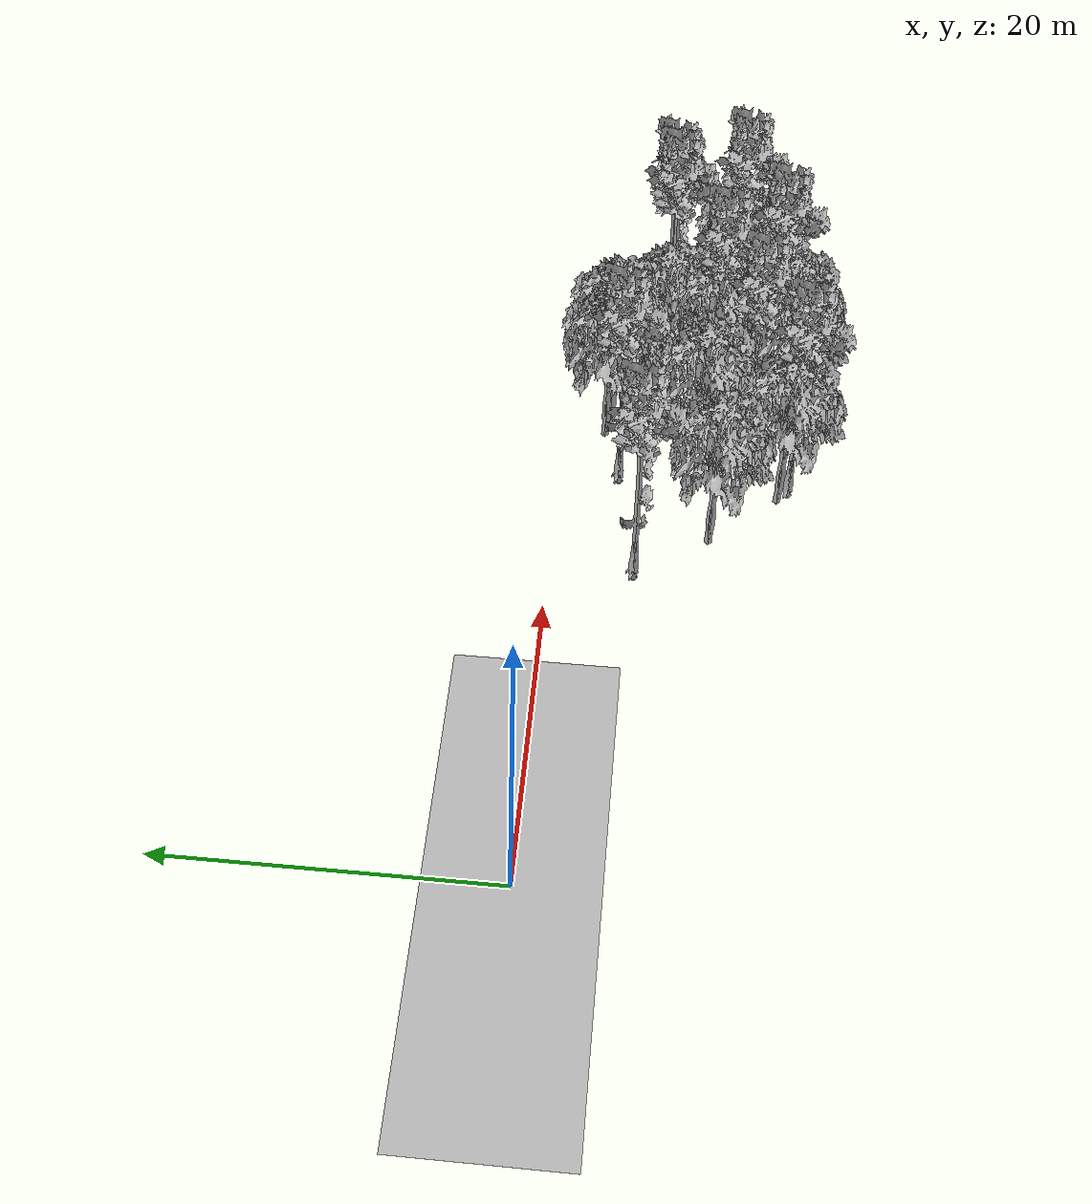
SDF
<sdf version="1.7">
 <world name="default">
  <model name="ground_plane">
   <static>1</static>
   <link name="link">
    <collision name="collision">
     <pose>-50 0 0 0 -0 0</pose>
     <geometry><plane><normal>0 0 1</normal><size>100 100</size></plane></geometry>
     <surface><contact><ode><min_depth>0.01</min_depth><max_vel>0</max_vel></ode></contact></surface>
    </collision>
    <visual name="grass">
     <cast_shadows>0</cast_shadows>
     <geometry>
      <mesh>
       <scale>0.5814285714285714 0.18142857142857144 0.1</scale>
       <uri>file://grass_plane/meshes/grass_plane.dae</uri>
      </mesh>
     </geometry>
    </visual>
   </link>
  </model>
  <model name="Tree 0">
   <static>1</static>
   <pose>46.44234237809738 -10.756084124833425 0 1.57079 -0 0</pose>
   <link name="link">
    <collision name="collision">
     <geometry><mesh><scale>3.5 5 3.5</scale><uri>model://tree_2/meshes/tree_2.obj</uri></mesh></geometry>
    </collision>
    <visual name="visual">
     <geometry><mesh><scale>3.5 5 3.5</scale><uri>model://tree_2/meshes/tree_2.obj</uri></mesh></geometry>
    </visual>
   </link>
  </model>
  <model name="Tree 3">
   <static>1</static>
   <pose>26.230850330044063 -9.717977953429486 0 1.57079 -0 0</pose>
   <link name="link">
    <collision name="collision">
     <geometry><mesh><scale>3.5 5 3.5</scale><uri>model://tree_2/meshes/tree_2.obj</uri></mesh></geometry>
    </collision>
    <visual name="visual">
     <geometry><mesh><scale>3.5 5 3.5</scale><uri>model://tree_2/meshes/tree_2.obj</uri></mesh></geometry>
    </visual>
   </link>
  </model>
  <model name="Tree 4">
   <static>1</static>
   <pose>46.77839195121835 -6.231885729458671 0 1.57079 -0 0</pose>
   <link name="link">
    <collision name="collision">
     <geometry><mesh><scale>3.5 5 3.5</scale><uri>model://tree_9/meshes/tree_9.obj</uri></mesh></geometry>
    </collision>
    <visual name="visual">
     <geometry><mesh><scale>3.5 5 3.5</scale><uri>model://tree_9/meshes/tree_9.obj</uri></mesh></geometry>
    </visual>
   </link>
  </model>
  <model name="Tree 8">
   <static>1</static>
   <pose>39.88170658094448 -6.213259696053058 0 1.57079 -0 0</pose>
   <link name="link">
    <collision name="collision">
     <geometry><mesh><scale>3.5 5 3.5</scale><uri>model://tree_2/meshes/tree_2.obj</uri></mesh></geometry>
    </collision>
    <visual name="visual">
     <geometry><mesh><scale>3.5 5 3.5</scale><uri>model://tree_2/meshes/tree_2.obj</uri></mesh></geometry>
    </visual>
   </link>
  </model>
  <model name="Tree 19">
   <static>1</static>
   <pose>45.95892816855037 -6.172525978426117 0 1.57079 -0 0</pose>
   <link name="link">
    <collision name="collision">
     <geometry><mesh><scale>3 2 3</scale><uri>model://tree_3/meshes/tree_3.obj</uri></mesh></geometry>
    </collision>
    <visual name="visual">
     <geometry><mesh><scale>3 2 3</scale><uri>model://tree_3/meshes/tree_3.obj</uri></mesh></geometry>
    </visual>
   </link>
  </model>
  <model name="Tree 29">
   <static>1</static>
   <pose>35.246683009240556 -2.729741963374302 0 1.57079 -0 0</pose>
   <link name="link">
    <collision name="collision">
     <geometry><mesh><scale>3.5 5 3.5</scale><uri>model://tree_2/meshes/tree_2.obj</uri></mesh></geometry>
    </collision>
    <visual name="visual">
     <geometry><mesh><scale>3.5 5 3.5</scale><uri>model://tree_2/meshes/tree_2.obj</uri></mesh></geometry>
    </visual>
   </link>
  </model>
  <model name="Tree 38">
   <static>1</static>
   <pose>31.651971686746805 -14.640383326197247 0 1.57079 -0 0</pose>
   <link name="link">
    <collision name="collision">
     <geometry><mesh><scale>3.5 5 3.5</scale><uri>model://tree_9/meshes/tree_9.obj</uri></mesh></geometry>
    </collision>
    <visual name="visual">
     <geometry><mesh><scale>3.5 5 3.5</scale><uri>model://tree_9/meshes/tree_9.obj</uri></mesh></geometry>
    </visual>
   </link>
  </model>
  <model name="Tree 57">
   <static>1</static>
   <pose>46.33204173582793 -11.72100695816027 0 1.57079 -0 0</pose>
   <link name="link">
    <collision name="collision">
     <geometry><mesh><scale>3 2 3</scale><uri>model://tree_3/meshes/tree_3.obj</uri></mesh></geometry>
    </collision>
    <visual name="visual">
     <geometry><mesh><scale>3 2 3</scale><uri>model://tree_3/meshes/tree_3.obj</uri></mesh></geometry>
    </visual>
   </link>
  </model>
  <model name="Tree 58">
   <static>1</static>
   <pose>40.023696653133584 -9.654218644020368 0 1.57079 -0 0</pose>
   <link name="link">
    <collision name="collision">
     <geometry><mesh><scale>3.5 5 3.5</scale><uri>model://tree_9/meshes/tree_9.obj</uri></mesh></geometry>
    </collision>
    <visual name="visual">
     <geometry><mesh><scale>3.5 5 3.5</scale><uri>model://tree_9/meshes/tree_9.obj</uri></mesh></geometry>
    </visual>
   </link>
  </model>
  <model name="Tree 64">
   <static>1</static>
   <pose>32.59403298368298 -8.851362704827547 0 1.57079 -0 0</pose>
   <link name="link">
    <collision name="collision">
     <geometry><mesh><scale>3.5 5 3.5</scale><uri>model://tree_2/meshes/tree_2.obj</uri></mesh></geometry>
    </collision>
    <visual name="visual">
     <geometry><mesh><scale>3.5 5 3.5</scale><uri>model://tree_2/meshes/tree_2.obj</uri></mesh></geometry>
    </visual>
   </link>
  </model>
  <model name="Tree 68">
   <static>1</static>
   <pose>30.19097776993118 -13.942390440455483 0 1.57079 -0 0</pose>
   <link name="link">
    <collision name="collision">
     <geometry><mesh><scale>3.5 5 3.5</scale><uri>model://tree_2/meshes/tree_2.obj</uri></mesh></geometry>
    </collision>
    <visual name="visual">
     <geometry><mesh><scale>3.5 5 3.5</scale><uri>model://tree_2/meshes/tree_2.obj</uri></mesh></geometry>
    </visual>
   </link>
  </model>
  <model name="Tree 70">
   <static>1</static>
   <pose>42.532105885869896 -12.212203134545808 0 1.57079 -0 0</pose>
   <link name="link">
    <collision name="collision">
     <geometry><mesh><scale>3.5 5 3.5</scale><uri>model://tree_2/meshes/tree_2.obj</uri></mesh></geometry>
    </collision>
    <visual name="visual">
     <geometry><mesh><scale>3.5 5 3.5</scale><uri>model://tree_2/meshes/tree_2.obj</uri></mesh></geometry>
    </visual>
   </link>
  </model>
  <model name="Tree 73">
   <static>1</static>
   <pose>31.8563833819682 -3.8118212932501354 0 1.57079 -0 0</pose>
   <link name="link">
    <collision name="collision">
     <geometry><mesh><scale>3.5 5 3.5</scale><uri>model://tree_9/meshes/tree_9.obj</uri></mesh></geometry>
    </collision>
    <visual name="visual">
     <geometry><mesh><scale>3.5 5 3.5</scale><uri>model://tree_9/meshes/tree_9.obj</uri></mesh></geometry>
    </visual>
   </link>
  </model>
  <model name="Tree 87">
   <static>1</static>
   <pose>35.820080222283266 -11.997940688318103 0 1.57079 -0 0</pose>
   <link name="link">
    <collision name="collision">
     <geometry><mesh><scale>3.5 5 3.5</scale><uri>model://tree_9/meshes/tree_9.obj</uri></mesh></geometry>
    </collision>
    <visual name="visual">
     <geometry><mesh><scale>3.5 5 3.5</scale><uri>model://tree_9/meshes/tree_9.obj</uri></mesh></geometry>
    </visual>
   </link>
  </model>
  <model name="Tree 97">
   <static>1</static>
   <pose>37.056969328337885 -14.278539791182713 0 1.57079 -0 0</pose>
   <link name="link">
    <collision name="collision">
     <geometry><mesh><scale>3.5 5 3.5</scale><uri>model://tree_2/meshes/tree_2.obj</uri></mesh></geometry>
    </collision>
    <visual name="visual">
     <geometry><mesh><scale>3.5 5 3.5</scale><uri>model://tree_2/meshes/tree_2.obj</uri></mesh></geometry>
    </visual>
   </link>
  </model>
  <model name="Tree 129">
   <static>1</static>
   <pose>48.28610267093606 -10.78665014191192 0 1.57079 -0 0</pose>
   <link name="link">
    <collision name="collision">
     <geometry><mesh><scale>3.5 5 3.5</scale><uri>model://tree_9/meshes/tree_9.obj</uri></mesh></geometry>
    </collision>
    <visual name="visual">
     <geometry><mesh><scale>3.5 5 3.5</scale><uri>model://tree_9/meshes/tree_9.obj</uri></mesh></geometry>
    </visual>
   </link>
  </model>
  <model name="Tree 141">
   <static>1</static>
   <pose>38.23505923074357 -3.042040437242992 0 1.57079 -0 0</pose>
   <link name="link">
    <collision name="collision">
     <geometry><mesh><scale>3.5 5 3.5</scale><uri>model://tree_2/meshes/tree_2.obj</uri></mesh></geometry>
    </collision>
    <visual name="visual">
     <geometry><mesh><scale>3.5 5 3.5</scale><uri>model://tree_2/meshes/tree_2.obj</uri></mesh></geometry>
    </visual>
   </link>
  </model>
  <model name="Tree 144">
   <static>1</static>
   <pose>38.896991021569505 -9.504169842730736 0 1.57079 -0 0</pose>
   <link name="link">
    <collision name="collision">
     <geometry><mesh><scale>3.5 5 3.5</scale><uri>model://tree_2/meshes/tree_2.obj</uri></mesh></geometry>
    </collision>
    <visual name="visual">
     <geometry><mesh><scale>3.5 5 3.5</scale><uri>model://tree_2/meshes/tree_2.obj</uri></mesh></geometry>
    </visual>
   </link>
  </model>
  <model name="Tree 158">
   <static>1</static>
   <pose>39.888898270245434 -14.094243223104264 0 1.57079 -0 0</pose>
   <link name="link">
    <collision name="collision">
     <geometry><mesh><scale>3.5 5 3.5</scale><uri>model://tree_2/meshes/tree_2.obj</uri></mesh></geometry>
    </collision>
    <visual name="visual">
     <geometry><mesh><scale>3.5 5 3.5</scale><uri>model://tree_2/meshes/tree_2.obj</uri></mesh></geometry>
    </visual>
   </link>
  </model>
  <model name="Tree 167">
   <static>1</static>
   <pose>23.595023198161158 -5.217280234299643 0 1.57079 -0 0</pose>
   <link name="link">
    <collision name="collision">
     <geometry><mesh><scale>3.5 5 3.5</scale><uri>model://tree_9/meshes/tree_9.obj</uri></mesh></geometry>
    </collision>
    <visual name="visual">
     <geometry><mesh><scale>3.5 5 3.5</scale><uri>model://tree_9/meshes/tree_9.obj</uri></mesh></geometry>
    </visual>
   </link>
  </model>
  <model name="Tree 169">
   <static>1</static>
   <pose>42.75359710872402 -13.263877540535265 0 1.57079 -0 0</pose>
   <link name="link">
    <collision name="collision">
     <geometry><mesh><scale>3.5 5 3.5</scale><uri>model://tree_9/meshes/tree_9.obj</uri></mesh></geometry>
    </collision>
    <visual name="visual">
     <geometry><mesh><scale>3.5 5 3.5</scale><uri>model://tree_9/meshes/tree_9.obj</uri></mesh></geometry>
    </visual>
   </link>
  </model>
  <model name="Tree 171">
   <static>1</static>
   <pose>35.87942179058716 -3.003529881434492 0 1.57079 -0 0</pose>
   <link name="link">
    <collision name="collision">
     <geometry><mesh><scale>3.5 5 3.5</scale><uri>model://tree_2/meshes/tree_2.obj</uri></mesh></geometry>
    </collision>
    <visual name="visual">
     <geometry><mesh><scale>3.5 5 3.5</scale><uri>model://tree_2/meshes/tree_2.obj</uri></mesh></geometry>
    </visual>
   </link>
  </model>
  <model name="Tree 172">
   <static>1</static>
   <pose>45.76382788568881 -6.452779315208131 0 1.57079 -0 0</pose>
   <link name="link">
    <collision name="collision">
     <geometry><mesh><scale>3.5 5 3.5</scale><uri>model://tree_9/meshes/tree_9.obj</uri></mesh></geometry>
    </collision>
    <visual name="visual">
     <geometry><mesh><scale>3.5 5 3.5</scale><uri>model://tree_9/meshes/tree_9.obj</uri></mesh></geometry>
    </visual>
   </link>
  </model>
 </world>
</sdf>
